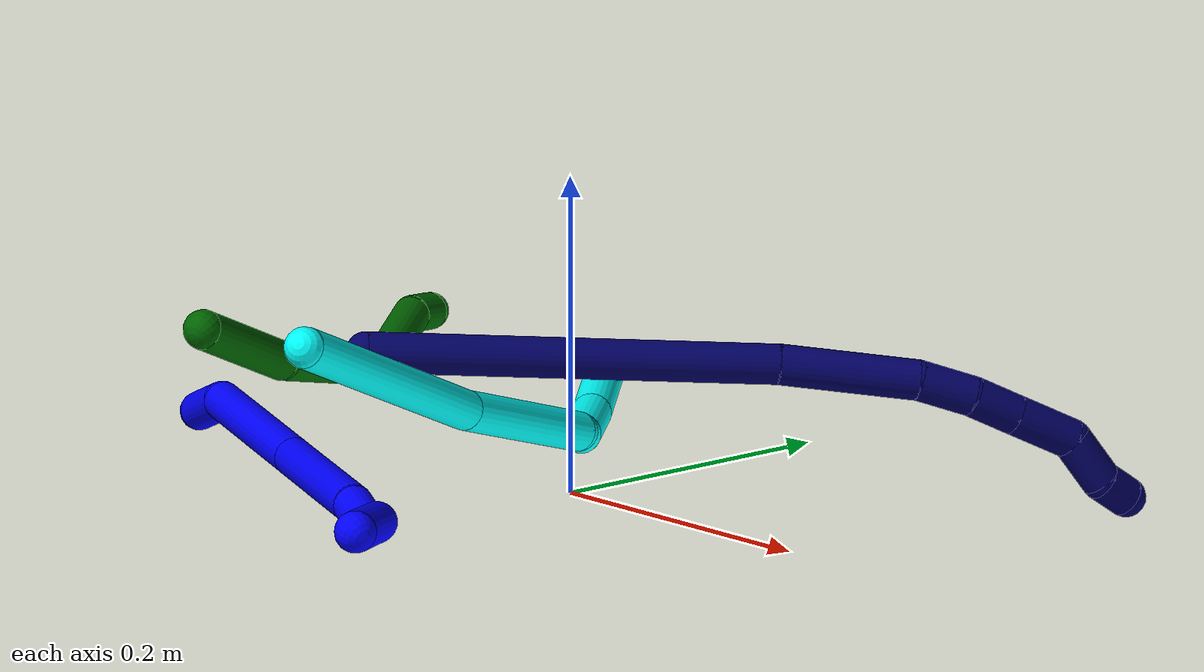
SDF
<sdf version="1.7">
 <world name="default">
  <model name="1">
   <static>0</static>
   <link name="1">
    <collision name="collision-cylinder-e_1_1_4">
     <pose>-0.032792 0.018142 -0.029388 -2.58853 -0.759489 1.90535</pose>
     <geometry><cylinder><radius>0.0125</radius><length>0.09525</length></cylinder></geometry>
     <surface>
      <friction><ode><mu>1.16</mu><mu2>1.16</mu2><slip1>0</slip1><slip2>0</slip2></ode></friction>
      <contact><ode><kp>1e+06</kp><kd>1</kd><max_vel>0</max_vel><min_depth>0.001</min_depth></ode></contact>
     </surface>
    </collision>
    <visual name="visual-cylinder-e_1_1_4">
     <pose>-0.032792 0.018142 -0.029388 -2.58853 -0.759489 1.90535</pose>
     <geometry><cylinder><radius>0.0125</radius><length>0.09525</length></cylinder></geometry>
     <material><ambient>0 0 1 1</ambient></material>
    </visual>
    <collision name="collision-cylinder-e_2_4_5">
     <pose>-0.084616 0.055157 -0.084108 -2.50127 -0.542245 1.39537</pose>
     <geometry><cylinder><radius>0.0125</radius><length>0.073759</length></cylinder></geometry>
     <surface>
      <friction><ode><mu>1.16</mu><mu2>1.16</mu2><slip1>0</slip1><slip2>0</slip2></ode></friction>
      <contact><ode><kp>1e+06</kp><kd>1</kd><max_vel>0</max_vel><min_depth>0.001</min_depth></ode></contact>
     </surface>
    </collision>
    <visual name="visual-cylinder-e_2_4_5">
     <pose>-0.084616 0.055157 -0.084108 -2.50127 -0.542245 1.39537</pose>
     <geometry><cylinder><radius>0.0125</radius><length>0.073759</length></cylinder></geometry>
     <material><ambient>0 0 1 1</ambient></material>
    </visual>
    <collision name="collision-cylinder-e_3_5_6">
     <pose>-0.108938 0.075839 -0.124562 -3.02256 -0.334287 2.46257</pose>
     <geometry><cylinder><radius>0.0125</radius><length>0.032246</length></cylinder></geometry>
     <surface>
      <friction><ode><mu>1.16</mu><mu2>1.16</mu2><slip1>0</slip1><slip2>0</slip2></ode></friction>
      <contact><ode><kp>1e+06</kp><kd>1</kd><max_vel>0</max_vel><min_depth>0.001</min_depth></ode></contact>
     </surface>
    </collision>
    <visual name="visual-cylinder-e_3_5_6">
     <pose>-0.108938 0.075839 -0.124562 -3.02256 -0.334287 2.46257</pose>
     <geometry><cylinder><radius>0.0125</radius><length>0.032246</length></cylinder></geometry>
     <material><ambient>0 0 1 1</ambient></material>
    </visual>
    <collision name="collision-cylinder-e_4_6_7">
     <pose>-0.132362 0.094624 -0.193464 -2.83583 -0.311115 1.58843</pose>
     <geometry><cylinder><radius>0.0125</radius><length>0.118479</length></cylinder></geometry>
     <surface>
      <friction><ode><mu>1.16</mu><mu2>1.16</mu2><slip1>0</slip1><slip2>0</slip2></ode></friction>
      <contact><ode><kp>1e+06</kp><kd>1</kd><max_vel>0</max_vel><min_depth>0.001</min_depth></ode></contact>
     </surface>
    </collision>
    <visual name="visual-cylinder-e_4_6_7">
     <pose>-0.132362 0.094624 -0.193464 -2.83583 -0.311115 1.58843</pose>
     <geometry><cylinder><radius>0.0125</radius><length>0.118479</length></cylinder></geometry>
     <material><ambient>0 0 1 1</ambient></material>
    </visual>
    <collision name="collision-cylinder-e_5_7_8">
     <pose>-0.167376 0.12816 -0.30773 -2.87436 -0.262935 1.55441</pose>
     <geometry><cylinder><radius>0.0125</radius><length>0.129888</length></cylinder></geometry>
     <surface>
      <friction><ode><mu>1.16</mu><mu2>1.16</mu2><slip1>0</slip1><slip2>0</slip2></ode></friction>
      <contact><ode><kp>1e+06</kp><kd>1</kd><max_vel>0</max_vel><min_depth>0.001</min_depth></ode></contact>
     </surface>
    </collision>
    <visual name="visual-cylinder-e_5_7_8">
     <pose>-0.167376 0.12816 -0.30773 -2.87436 -0.262935 1.55441</pose>
     <geometry><cylinder><radius>0.0125</radius><length>0.129888</length></cylinder></geometry>
     <material><ambient>0 0 1 1</ambient></material>
    </visual>
    <collision name="collision-cylinder-e_6_8_2">
     <pose>-0.191438 0.160143 -0.386791 -2.44861 -0.289119 0.766507</pose>
     <geometry><cylinder><radius>0.0125</radius><length>0.050379</length></cylinder></geometry>
     <surface>
      <friction><ode><mu>1.16</mu><mu2>1.16</mu2><slip1>0</slip1><slip2>0</slip2></ode></friction>
      <contact><ode><kp>1e+06</kp><kd>1</kd><max_vel>0</max_vel><min_depth>0.001</min_depth></ode></contact>
     </surface>
    </collision>
    <visual name="visual-cylinder-e_6_8_2">
     <pose>-0.191438 0.160143 -0.386791 -2.44861 -0.289119 0.766507</pose>
     <geometry><cylinder><radius>0.0125</radius><length>0.050379</length></cylinder></geometry>
     <material><ambient>0 0 1 1</ambient></material>
    </visual>
    <collision name="collision-sphere-2">
     <pose>-0.19862 0.175568 -0.405366 0 -0 0</pose>
     <geometry><sphere><radius>0.0125</radius></sphere></geometry>
     <surface>
      <friction><ode><mu>1.16</mu><mu2>1.16</mu2><slip1>0</slip1><slip2>0</slip2></ode></friction>
      <contact><ode><kp>1e+06</kp><kd>1</kd><max_vel>0</max_vel><min_depth>0.001</min_depth></ode></contact>
     </surface>
    </collision>
    <visual name="visual-sphere-2">
     <pose>-0.19862 0.175568 -0.405366 0 -0 0</pose>
     <geometry><sphere><radius>0.0125</radius></sphere></geometry>
     <material><ambient>0 0 1 1</ambient></material>
    </visual>
    <collision name="collision-sphere-4">
     <pose>-0.065584 0.036284 -0.058776 0 -0 0</pose>
     <geometry><sphere><radius>0.0125</radius></sphere></geometry>
     <surface>
      <friction><ode><mu>1.16</mu><mu2>1.16</mu2><slip1>0</slip1><slip2>0</slip2></ode></friction>
      <contact><ode><kp>1e+06</kp><kd>1</kd><max_vel>0</max_vel><min_depth>0.001</min_depth></ode></contact>
     </surface>
    </collision>
    <visual name="visual-sphere-4">
     <pose>-0.065584 0.036284 -0.058776 0 -0 0</pose>
     <geometry><sphere><radius>0.0125</radius></sphere></geometry>
     <material><ambient>0 0 1 1</ambient></material>
    </visual>
    <collision name="collision-sphere-1">
     <geometry><sphere><radius>0.0125</radius></sphere></geometry>
     <surface>
      <friction><ode><mu>1.16</mu><mu2>1.16</mu2><slip1>0</slip1><slip2>0</slip2></ode></friction>
      <contact><ode><kp>1e+06</kp><kd>1</kd><max_vel>0</max_vel><min_depth>0.001</min_depth></ode></contact>
     </surface>
    </collision>
    <visual name="visual-sphere-1">
     <geometry><sphere><radius>0.0125</radius></sphere></geometry>
     <material><ambient>0 0 1 1</ambient></material>
    </visual>
    <collision name="collision-sphere-8">
     <pose>-0.184257 0.144719 -0.368216 0 -0 0</pose>
     <geometry><sphere><radius>0.0125</radius></sphere></geometry>
     <surface>
      <friction><ode><mu>1.16</mu><mu2>1.16</mu2><slip1>0</slip1><slip2>0</slip2></ode></friction>
      <contact><ode><kp>1e+06</kp><kd>1</kd><max_vel>0</max_vel><min_depth>0.001</min_depth></ode></contact>
     </surface>
    </collision>
    <visual name="visual-sphere-8">
     <pose>-0.184257 0.144719 -0.368216 0 -0 0</pose>
     <geometry><sphere><radius>0.0125</radius></sphere></geometry>
     <material><ambient>0 0 1 1</ambient></material>
    </visual>
    <collision name="collision-sphere-5">
     <pose>-0.103648 0.07403 -0.109439 0 -0 0</pose>
     <geometry><sphere><radius>0.0125</radius></sphere></geometry>
     <surface>
      <friction><ode><mu>1.16</mu><mu2>1.16</mu2><slip1>0</slip1><slip2>0</slip2></ode></friction>
      <contact><ode><kp>1e+06</kp><kd>1</kd><max_vel>0</max_vel><min_depth>0.001</min_depth></ode></contact>
     </surface>
    </collision>
    <visual name="visual-sphere-5">
     <pose>-0.103648 0.07403 -0.109439 0 -0 0</pose>
     <geometry><sphere><radius>0.0125</radius></sphere></geometry>
     <material><ambient>0 0 1 1</ambient></material>
    </visual>
    <collision name="collision-sphere-6">
     <pose>-0.114228 0.077647 -0.139684 0 -0 0</pose>
     <geometry><sphere><radius>0.0125</radius></sphere></geometry>
     <surface>
      <friction><ode><mu>1.16</mu><mu2>1.16</mu2><slip1>0</slip1><slip2>0</slip2></ode></friction>
      <contact><ode><kp>1e+06</kp><kd>1</kd><max_vel>0</max_vel><min_depth>0.001</min_depth></ode></contact>
     </surface>
    </collision>
    <visual name="visual-sphere-6">
     <pose>-0.114228 0.077647 -0.139684 0 -0 0</pose>
     <geometry><sphere><radius>0.0125</radius></sphere></geometry>
     <material><ambient>0 0 1 1</ambient></material>
    </visual>
    <collision name="collision-sphere-7">
     <pose>-0.150496 0.1116 -0.247244 0 -0 0</pose>
     <geometry><sphere><radius>0.0125</radius></sphere></geometry>
     <surface>
      <friction><ode><mu>1.16</mu><mu2>1.16</mu2><slip1>0</slip1><slip2>0</slip2></ode></friction>
      <contact><ode><kp>1e+06</kp><kd>1</kd><max_vel>0</max_vel><min_depth>0.001</min_depth></ode></contact>
     </surface>
    </collision>
    <visual name="visual-sphere-7">
     <pose>-0.150496 0.1116 -0.247244 0 -0 0</pose>
     <geometry><sphere><radius>0.0125</radius></sphere></geometry>
     <material><ambient>0 0 1 1</ambient></material>
    </visual>
    <inertial>
     <pose>-0.119888 0.088334 -0.190795 0 -0 0</pose>
     <mass>0.5</mass>
     <inertia><ixx>0.000389</ixx><ixy>0</ixy><ixz>0</ixz><iyy>0.000501</iyy><iyz>0</iyz><izz>-8e-06</izz></inertia>
    </inertial>
   </link>
   <pose>0.140263 -0.288449 0.04923 -1.91668 -0.050495 -1.62883</pose>
  </model>
  <model name="3">
   <static>0</static>
   <link name="3">
    <collision name="collision-cylinder-e_1_1_4">
     <pose>0.015715 0.008049 -0.098988 -3.06046 0.156934 -2.18855</pose>
     <geometry><cylinder><radius>0.0125</radius><length>0.201101</length></cylinder></geometry>
     <surface>
      <friction><ode><mu>1.16</mu><mu2>1.16</mu2><slip1>0</slip1><slip2>0</slip2></ode></friction>
      <contact><ode><kp>1e+06</kp><kd>1</kd><max_vel>0</max_vel><min_depth>0.001</min_depth></ode></contact>
     </surface>
    </collision>
    <visual name="visual-cylinder-e_1_1_4">
     <pose>0.015715 0.008049 -0.098988 -3.06046 0.156934 -2.18855</pose>
     <geometry><cylinder><radius>0.0125</radius><length>0.201101</length></cylinder></geometry>
     <material><ambient>0.003922 1 0.996078 1</ambient></material>
    </visual>
    <collision name="collision-cylinder-e_2_4_5">
     <pose>0.044223 0.027887 -0.262782 -2.96164 0.191832 -1.63507</pose>
     <geometry><cylinder><radius>0.0125</radius><length>0.1342</length></cylinder></geometry>
     <surface>
      <friction><ode><mu>1.16</mu><mu2>1.16</mu2><slip1>0</slip1><slip2>0</slip2></ode></friction>
      <contact><ode><kp>1e+06</kp><kd>1</kd><max_vel>0</max_vel><min_depth>0.001</min_depth></ode></contact>
     </surface>
    </collision>
    <visual name="visual-cylinder-e_2_4_5">
     <pose>0.044223 0.027887 -0.262782 -2.96164 0.191832 -1.63507</pose>
     <geometry><cylinder><radius>0.0125</radius><length>0.1342</length></cylinder></geometry>
     <material><ambient>0.003922 1 0.996078 1</ambient></material>
    </visual>
    <collision name="collision-cylinder-e_3_5_6">
     <pose>0.054472 0.040438 -0.337872 -3.06761 -0.241909 2.55045</pose>
     <geometry><cylinder><radius>0.0125</radius><length>0.021244</length></cylinder></geometry>
     <surface>
      <friction><ode><mu>1.16</mu><mu2>1.16</mu2><slip1>0</slip1><slip2>0</slip2></ode></friction>
      <contact><ode><kp>1e+06</kp><kd>1</kd><max_vel>0</max_vel><min_depth>0.001</min_depth></ode></contact>
     </surface>
    </collision>
    <visual name="visual-cylinder-e_3_5_6">
     <pose>0.054472 0.040438 -0.337872 -3.06761 -0.241909 2.55045</pose>
     <geometry><cylinder><radius>0.0125</radius><length>0.021244</length></cylinder></geometry>
     <material><ambient>0.003922 1 0.996078 1</ambient></material>
    </visual>
    <collision name="collision-cylinder-e_4_6_7">
     <pose>0.044601 0.05094 -0.370272 -2.72676 -0.29438 1.22751</pose>
     <geometry><cylinder><radius>0.0125</radius><length>0.050501</length></cylinder></geometry>
     <surface>
      <friction><ode><mu>1.16</mu><mu2>1.16</mu2><slip1>0</slip1><slip2>0</slip2></ode></friction>
      <contact><ode><kp>1e+06</kp><kd>1</kd><max_vel>0</max_vel><min_depth>0.001</min_depth></ode></contact>
     </surface>
    </collision>
    <visual name="visual-cylinder-e_4_6_7">
     <pose>0.044601 0.05094 -0.370272 -2.72676 -0.29438 1.22751</pose>
     <geometry><cylinder><radius>0.0125</radius><length>0.050501</length></cylinder></geometry>
     <material><ambient>0.003922 1 0.996078 1</ambient></material>
    </visual>
    <collision name="collision-cylinder-e_5_7_2">
     <pose>0.022298 0.082587 -0.430542 -2.62038 -0.328094 1.11106</pose>
     <geometry><cylinder><radius>0.0125</radius><length>0.092953</length></cylinder></geometry>
     <surface>
      <friction><ode><mu>1.16</mu><mu2>1.16</mu2><slip1>0</slip1><slip2>0</slip2></ode></friction>
      <contact><ode><kp>1e+06</kp><kd>1</kd><max_vel>0</max_vel><min_depth>0.001</min_depth></ode></contact>
     </surface>
    </collision>
    <visual name="visual-cylinder-e_5_7_2">
     <pose>0.022298 0.082587 -0.430542 -2.62038 -0.328094 1.11106</pose>
     <geometry><cylinder><radius>0.0125</radius><length>0.092953</length></cylinder></geometry>
     <material><ambient>0.003922 1 0.996078 1</ambient></material>
    </visual>
    <collision name="collision-sphere-2">
     <pose>0.007321 0.104495 -0.468697 0 -0 0</pose>
     <geometry><sphere><radius>0.0125</radius></sphere></geometry>
     <surface>
      <friction><ode><mu>1.16</mu><mu2>1.16</mu2><slip1>0</slip1><slip2>0</slip2></ode></friction>
      <contact><ode><kp>1e+06</kp><kd>1</kd><max_vel>0</max_vel><min_depth>0.001</min_depth></ode></contact>
     </surface>
    </collision>
    <visual name="visual-sphere-2">
     <pose>0.007321 0.104495 -0.468697 0 -0 0</pose>
     <geometry><sphere><radius>0.0125</radius></sphere></geometry>
     <material><ambient>0.003922 1 0.996078 1</ambient></material>
    </visual>
    <collision name="collision-sphere-7">
     <pose>0.037275 0.060679 -0.392387 0 -0 0</pose>
     <geometry><sphere><radius>0.0125</radius></sphere></geometry>
     <surface>
      <friction><ode><mu>1.16</mu><mu2>1.16</mu2><slip1>0</slip1><slip2>0</slip2></ode></friction>
      <contact><ode><kp>1e+06</kp><kd>1</kd><max_vel>0</max_vel><min_depth>0.001</min_depth></ode></contact>
     </surface>
    </collision>
    <visual name="visual-sphere-7">
     <pose>0.037275 0.060679 -0.392387 0 -0 0</pose>
     <geometry><sphere><radius>0.0125</radius></sphere></geometry>
     <material><ambient>0.003922 1 0.996078 1</ambient></material>
    </visual>
    <collision name="collision-sphere-6">
     <pose>0.051927 0.041201 -0.348157 0 -0 0</pose>
     <geometry><sphere><radius>0.0125</radius></sphere></geometry>
     <surface>
      <friction><ode><mu>1.16</mu><mu2>1.16</mu2><slip1>0</slip1><slip2>0</slip2></ode></friction>
      <contact><ode><kp>1e+06</kp><kd>1</kd><max_vel>0</max_vel><min_depth>0.001</min_depth></ode></contact>
     </surface>
    </collision>
    <visual name="visual-sphere-6">
     <pose>0.051927 0.041201 -0.348157 0 -0 0</pose>
     <geometry><sphere><radius>0.0125</radius></sphere></geometry>
     <material><ambient>0.003922 1 0.996078 1</ambient></material>
    </visual>
    <collision name="collision-sphere-5">
     <pose>0.057016 0.039676 -0.327588 0 -0 0</pose>
     <geometry><sphere><radius>0.0125</radius></sphere></geometry>
     <surface>
      <friction><ode><mu>1.16</mu><mu2>1.16</mu2><slip1>0</slip1><slip2>0</slip2></ode></friction>
      <contact><ode><kp>1e+06</kp><kd>1</kd><max_vel>0</max_vel><min_depth>0.001</min_depth></ode></contact>
     </surface>
    </collision>
    <visual name="visual-sphere-5">
     <pose>0.057016 0.039676 -0.327588 0 -0 0</pose>
     <geometry><sphere><radius>0.0125</radius></sphere></geometry>
     <material><ambient>0.003922 1 0.996078 1</ambient></material>
    </visual>
    <collision name="collision-sphere-1">
     <geometry><sphere><radius>0.0125</radius></sphere></geometry>
     <surface>
      <friction><ode><mu>1.16</mu><mu2>1.16</mu2><slip1>0</slip1><slip2>0</slip2></ode></friction>
      <contact><ode><kp>1e+06</kp><kd>1</kd><max_vel>0</max_vel><min_depth>0.001</min_depth></ode></contact>
     </surface>
    </collision>
    <visual name="visual-sphere-1">
     <geometry><sphere><radius>0.0125</radius></sphere></geometry>
     <material><ambient>0.003922 1 0.996078 1</ambient></material>
    </visual>
    <collision name="collision-sphere-4">
     <pose>0.03143 0.016097 -0.197976 0 -0 0</pose>
     <geometry><sphere><radius>0.0125</radius></sphere></geometry>
     <surface>
      <friction><ode><mu>1.16</mu><mu2>1.16</mu2><slip1>0</slip1><slip2>0</slip2></ode></friction>
      <contact><ode><kp>1e+06</kp><kd>1</kd><max_vel>0</max_vel><min_depth>0.001</min_depth></ode></contact>
     </surface>
    </collision>
    <visual name="visual-sphere-4">
     <pose>0.03143 0.016097 -0.197976 0 -0 0</pose>
     <geometry><sphere><radius>0.0125</radius></sphere></geometry>
     <material><ambient>0.003922 1 0.996078 1</ambient></material>
    </visual>
    <inertial>
     <pose>0.029155 0.032939 -0.242139 0 -0 0</pose>
     <mass>0.5</mass>
     <inertia>
      <ixx>-0.001055</ixx>
      <ixy>0</ixy>
      <ixz>0</ixz>
      <iyy>-0.000269</iyy>
      <iyz>0</iyz>
      <izz>-0.000286</izz>
     </inertia>
    </inertial>
   </link>
   <pose>0.094748 -0.288039 0.151462 1.12606 0.223378 0.426385</pose>
  </model>
  <model name="6">
   <static>0</static>
   <link name="6">
    <collision name="collision-cylinder-e_1_1_4">
     <pose>-0.02012 0.024438 -0.035634 -2.54045 -0.435784 1.24052</pose>
     <geometry><cylinder><radius>0.0125</radius><length>0.095327</length></cylinder></geometry>
     <surface>
      <friction><ode><mu>1.16</mu><mu2>1.16</mu2><slip1>0</slip1><slip2>0</slip2></ode></friction>
      <contact><ode><kp>1e+06</kp><kd>1</kd><max_vel>0</max_vel><min_depth>0.001</min_depth></ode></contact>
     </surface>
    </collision>
    <visual name="visual-cylinder-e_1_1_4">
     <pose>-0.02012 0.024438 -0.035634 -2.54045 -0.435784 1.24052</pose>
     <geometry><cylinder><radius>0.0125</radius><length>0.095327</length></cylinder></geometry>
     <material><ambient>0 0.392157 0.003922 1</ambient></material>
    </visual>
    <collision name="collision-cylinder-e_2_4_5">
     <pose>-0.046125 0.094836 -0.131685 -2.49128 -0.077376 0.228633</pose>
     <geometry><cylinder><radius>0.0125</radius><length>0.152278</length></cylinder></geometry>
     <surface>
      <friction><ode><mu>1.16</mu><mu2>1.16</mu2><slip1>0</slip1><slip2>0</slip2></ode></friction>
      <contact><ode><kp>1e+06</kp><kd>1</kd><max_vel>0</max_vel><min_depth>0.001</min_depth></ode></contact>
     </surface>
    </collision>
    <visual name="visual-cylinder-e_2_4_5">
     <pose>-0.046125 0.094836 -0.131685 -2.49128 -0.077376 0.228633</pose>
     <geometry><cylinder><radius>0.0125</radius><length>0.152278</length></cylinder></geometry>
     <material><ambient>0 0.392157 0.003922 1</ambient></material>
    </visual>
    <collision name="collision-cylinder-e_3_5_6">
     <pose>-0.057127 0.183523 -0.24759 -2.48538 -0.072939 0.213546</pose>
     <geometry><cylinder><radius>0.0125</radius><length>0.140438</length></cylinder></geometry>
     <surface>
      <friction><ode><mu>1.16</mu><mu2>1.16</mu2><slip1>0</slip1><slip2>0</slip2></ode></friction>
      <contact><ode><kp>1e+06</kp><kd>1</kd><max_vel>0</max_vel><min_depth>0.001</min_depth></ode></contact>
     </surface>
    </collision>
    <visual name="visual-cylinder-e_3_5_6">
     <pose>-0.057127 0.183523 -0.24759 -2.48538 -0.072939 0.213546</pose>
     <geometry><cylinder><radius>0.0125</radius><length>0.140438</length></cylinder></geometry>
     <material><ambient>0 0.392157 0.003922 1</ambient></material>
    </visual>
    <collision name="collision-cylinder-e_4_6_7">
     <pose>-0.0561 0.237486 -0.344669 -2.87777 0.141669 -0.982135</pose>
     <geometry><cylinder><radius>0.0125</radius><length>0.087037</length></cylinder></geometry>
     <surface>
      <friction><ode><mu>1.16</mu><mu2>1.16</mu2><slip1>0</slip1><slip2>0</slip2></ode></friction>
      <contact><ode><kp>1e+06</kp><kd>1</kd><max_vel>0</max_vel><min_depth>0.001</min_depth></ode></contact>
     </surface>
    </collision>
    <visual name="visual-cylinder-e_4_6_7">
     <pose>-0.0561 0.237486 -0.344669 -2.87777 0.141669 -0.982135</pose>
     <geometry><cylinder><radius>0.0125</radius><length>0.087037</length></cylinder></geometry>
     <material><ambient>0 0.392157 0.003922 1</ambient></material>
    </visual>
    <collision name="collision-cylinder-e_5_7_2">
     <pose>-0.052998 0.25309 -0.397526 -2.77166 -0.246719 1.17046</pose>
     <geometry><cylinder><radius>0.0125</radius><length>0.02492</length></cylinder></geometry>
     <surface>
      <friction><ode><mu>1.16</mu><mu2>1.16</mu2><slip1>0</slip1><slip2>0</slip2></ode></friction>
      <contact><ode><kp>1e+06</kp><kd>1</kd><max_vel>0</max_vel><min_depth>0.001</min_depth></ode></contact>
     </surface>
    </collision>
    <visual name="visual-cylinder-e_5_7_2">
     <pose>-0.052998 0.25309 -0.397526 -2.77166 -0.246719 1.17046</pose>
     <geometry><cylinder><radius>0.0125</radius><length>0.02492</length></cylinder></geometry>
     <material><ambient>0 0.392157 0.003922 1</ambient></material>
    </visual>
    <collision name="collision-sphere-2">
     <pose>-0.056041 0.257458 -0.408791 0 -0 0</pose>
     <geometry><sphere><radius>0.0125</radius></sphere></geometry>
     <surface>
      <friction><ode><mu>1.16</mu><mu2>1.16</mu2><slip1>0</slip1><slip2>0</slip2></ode></friction>
      <contact><ode><kp>1e+06</kp><kd>1</kd><max_vel>0</max_vel><min_depth>0.001</min_depth></ode></contact>
     </surface>
    </collision>
    <visual name="visual-sphere-2">
     <pose>-0.056041 0.257458 -0.408791 0 -0 0</pose>
     <geometry><sphere><radius>0.0125</radius></sphere></geometry>
     <material><ambient>0 0.392157 0.003922 1</ambient></material>
    </visual>
    <collision name="collision-sphere-7">
     <pose>-0.049955 0.248721 -0.386261 0 -0 0</pose>
     <geometry><sphere><radius>0.0125</radius></sphere></geometry>
     <surface>
      <friction><ode><mu>1.16</mu><mu2>1.16</mu2><slip1>0</slip1><slip2>0</slip2></ode></friction>
      <contact><ode><kp>1e+06</kp><kd>1</kd><max_vel>0</max_vel><min_depth>0.001</min_depth></ode></contact>
     </surface>
    </collision>
    <visual name="visual-sphere-7">
     <pose>-0.049955 0.248721 -0.386261 0 -0 0</pose>
     <geometry><sphere><radius>0.0125</radius></sphere></geometry>
     <material><ambient>0 0.392157 0.003922 1</ambient></material>
    </visual>
    <collision name="collision-sphere-6">
     <pose>-0.062245 0.226251 -0.303077 0 -0 0</pose>
     <geometry><sphere><radius>0.0125</radius></sphere></geometry>
     <surface>
      <friction><ode><mu>1.16</mu><mu2>1.16</mu2><slip1>0</slip1><slip2>0</slip2></ode></friction>
      <contact><ode><kp>1e+06</kp><kd>1</kd><max_vel>0</max_vel><min_depth>0.001</min_depth></ode></contact>
     </surface>
    </collision>
    <visual name="visual-sphere-6">
     <pose>-0.062245 0.226251 -0.303077 0 -0 0</pose>
     <geometry><sphere><radius>0.0125</radius></sphere></geometry>
     <material><ambient>0 0.392157 0.003922 1</ambient></material>
    </visual>
    <collision name="collision-sphere-5">
     <pose>-0.05201 0.140795 -0.192103 0 -0 0</pose>
     <geometry><sphere><radius>0.0125</radius></sphere></geometry>
     <surface>
      <friction><ode><mu>1.16</mu><mu2>1.16</mu2><slip1>0</slip1><slip2>0</slip2></ode></friction>
      <contact><ode><kp>1e+06</kp><kd>1</kd><max_vel>0</max_vel><min_depth>0.001</min_depth></ode></contact>
     </surface>
    </collision>
    <visual name="visual-sphere-5">
     <pose>-0.05201 0.140795 -0.192103 0 -0 0</pose>
     <geometry><sphere><radius>0.0125</radius></sphere></geometry>
     <material><ambient>0 0.392157 0.003922 1</ambient></material>
    </visual>
    <collision name="collision-sphere-1">
     <geometry><sphere><radius>0.0125</radius></sphere></geometry>
     <surface>
      <friction><ode><mu>1.16</mu><mu2>1.16</mu2><slip1>0</slip1><slip2>0</slip2></ode></friction>
      <contact><ode><kp>1e+06</kp><kd>1</kd><max_vel>0</max_vel><min_depth>0.001</min_depth></ode></contact>
     </surface>
    </collision>
    <visual name="visual-sphere-1">
     <geometry><sphere><radius>0.0125</radius></sphere></geometry>
     <material><ambient>0 0.392157 0.003922 1</ambient></material>
    </visual>
    <collision name="collision-sphere-4">
     <pose>-0.040239 0.048877 -0.071268 0 -0 0</pose>
     <geometry><sphere><radius>0.0125</radius></sphere></geometry>
     <surface>
      <friction><ode><mu>1.16</mu><mu2>1.16</mu2><slip1>0</slip1><slip2>0</slip2></ode></friction>
      <contact><ode><kp>1e+06</kp><kd>1</kd><max_vel>0</max_vel><min_depth>0.001</min_depth></ode></contact>
     </surface>
    </collision>
    <visual name="visual-sphere-4">
     <pose>-0.040239 0.048877 -0.071268 0 -0 0</pose>
     <geometry><sphere><radius>0.0125</radius></sphere></geometry>
     <material><ambient>0 0.392157 0.003922 1</ambient></material>
    </visual>
    <inertial>
     <pose>-0.046336 0.139043 -0.196252 0 -0 0</pose>
     <mass>0.5</mass>
     <inertia>
      <ixx>0.00071</ixx>
      <ixy>0</ixy>
      <ixz>0</ixz>
      <iyy>-0.000287</iyy>
      <iyz>0</iyz>
      <izz>-0.000347</izz>
     </inertia>
    </inertial>
   </link>
   <pose>-0.101733 -0.208953 0.117527 -1.98541 -0.635675 -2.55497</pose>
  </model>
  <model name="7">
   <static>0</static>
   <link name="7">
    <collision name="collision-cylinder-e_1_1_4">
     <pose>0.066024 0.089343 -0.059003 -2.15445 0.552574 -0.970088</pose>
     <geometry><cylinder><radius>0.0125</radius><length>0.251576</length></cylinder></geometry>
     <surface>
      <friction><ode><mu>1.16</mu><mu2>1.16</mu2><slip1>0</slip1><slip2>0</slip2></ode></friction>
      <contact><ode><kp>1e+06</kp><kd>1</kd><max_vel>0</max_vel><min_depth>0.001</min_depth></ode></contact>
     </surface>
    </collision>
    <visual name="visual-cylinder-e_1_1_4">
     <pose>0.066024 0.089343 -0.059003 -2.15445 0.552574 -0.970088</pose>
     <geometry><cylinder><radius>0.0125</radius><length>0.251576</length></cylinder></geometry>
     <material><ambient>0.003922 0 0.403922 1</ambient></material>
    </visual>
    <collision name="collision-cylinder-e_2_4_5">
     <pose>0.156807 0.205844 -0.140298 -2.25814 0.613872 -1.18095</pose>
     <geometry><cylinder><radius>0.0125</radius><length>0.085967</length></cylinder></geometry>
     <surface>
      <friction><ode><mu>1.16</mu><mu2>1.16</mu2><slip1>0</slip1><slip2>0</slip2></ode></friction>
      <contact><ode><kp>1e+06</kp><kd>1</kd><max_vel>0</max_vel><min_depth>0.001</min_depth></ode></contact>
     </surface>
    </collision>
    <visual name="visual-cylinder-e_2_4_5">
     <pose>0.156807 0.205844 -0.140298 -2.25814 0.613872 -1.18095</pose>
     <geometry><cylinder><radius>0.0125</radius><length>0.085967</length></cylinder></geometry>
     <material><ambient>0.003922 0 0.403922 1</ambient></material>
    </visual>
    <collision name="collision-cylinder-e_3_5_6">
     <pose>0.189387 0.243209 -0.17455 -2.43499 0.461519 -1.1345</pose>
     <geometry><cylinder><radius>0.0125</radius><length>0.03512</length></cylinder></geometry>
     <surface>
      <friction><ode><mu>1.16</mu><mu2>1.16</mu2><slip1>0</slip1><slip2>0</slip2></ode></friction>
      <contact><ode><kp>1e+06</kp><kd>1</kd><max_vel>0</max_vel><min_depth>0.001</min_depth></ode></contact>
     </surface>
    </collision>
    <visual name="visual-cylinder-e_3_5_6">
     <pose>0.189387 0.243209 -0.17455 -2.43499 0.461519 -1.1345</pose>
     <geometry><cylinder><radius>0.0125</radius><length>0.03512</length></cylinder></geometry>
     <material><ambient>0.003922 0 0.403922 1</ambient></material>
    </visual>
    <collision name="collision-cylinder-e_4_6_7">
     <pose>0.201825 0.261962 -0.198359 -2.5169 0.306166 -0.89146</pose>
     <geometry><cylinder><radius>0.0125</radius><length>0.030645</length></cylinder></geometry>
     <surface>
      <friction><ode><mu>1.16</mu><mu2>1.16</mu2><slip1>0</slip1><slip2>0</slip2></ode></friction>
      <contact><ode><kp>1e+06</kp><kd>1</kd><max_vel>0</max_vel><min_depth>0.001</min_depth></ode></contact>
     </surface>
    </collision>
    <visual name="visual-cylinder-e_4_6_7">
     <pose>0.201825 0.261962 -0.198359 -2.5169 0.306166 -0.89146</pose>
     <geometry><cylinder><radius>0.0125</radius><length>0.030645</length></cylinder></geometry>
     <material><ambient>0.003922 0 0.403922 1</ambient></material>
    </visual>
    <collision name="collision-cylinder-e_5_7_8">
     <pose>0.212582 0.281972 -0.225945 -2.51191 0.305444 -0.883013</pose>
     <geometry><cylinder><radius>0.0125</radius><length>0.040829</length></cylinder></geometry>
     <surface>
      <friction><ode><mu>1.16</mu><mu2>1.16</mu2><slip1>0</slip1><slip2>0</slip2></ode></friction>
      <contact><ode><kp>1e+06</kp><kd>1</kd><max_vel>0</max_vel><min_depth>0.001</min_depth></ode></contact>
     </surface>
    </collision>
    <visual name="visual-cylinder-e_5_7_8">
     <pose>0.212582 0.281972 -0.225945 -2.51191 0.305444 -0.883013</pose>
     <geometry><cylinder><radius>0.0125</radius><length>0.040829</length></cylinder></geometry>
     <material><ambient>0.003922 0 0.403922 1</ambient></material>
    </visual>
    <collision name="collision-cylinder-e_6_8_9">
     <pose>0.220919 0.295855 -0.258016 -2.99469 0.132325 -1.46613</pose>
     <geometry><cylinder><radius>0.0125</radius><length>0.033316</length></cylinder></geometry>
     <surface>
      <friction><ode><mu>1.16</mu><mu2>1.16</mu2><slip1>0</slip1><slip2>0</slip2></ode></friction>
      <contact><ode><kp>1e+06</kp><kd>1</kd><max_vel>0</max_vel><min_depth>0.001</min_depth></ode></contact>
     </surface>
    </collision>
    <visual name="visual-cylinder-e_6_8_9">
     <pose>0.220919 0.295855 -0.258016 -2.99469 0.132325 -1.46613</pose>
     <geometry><cylinder><radius>0.0125</radius><length>0.033316</length></cylinder></geometry>
     <material><ambient>0.003922 0 0.403922 1</ambient></material>
    </visual>
    <collision name="collision-cylinder-e_7_9_2">
     <pose>0.223664 0.3041 -0.283985 -2.59761 0.048594 -0.173828</pose>
     <geometry><cylinder><radius>0.0125</radius><length>0.022547</length></cylinder></geometry>
     <surface>
      <friction><ode><mu>1.16</mu><mu2>1.16</mu2><slip1>0</slip1><slip2>0</slip2></ode></friction>
      <contact><ode><kp>1e+06</kp><kd>1</kd><max_vel>0</max_vel><min_depth>0.001</min_depth></ode></contact>
     </surface>
    </collision>
    <visual name="visual-cylinder-e_7_9_2">
     <pose>0.223664 0.3041 -0.283985 -2.59761 0.048594 -0.173828</pose>
     <geometry><cylinder><radius>0.0125</radius><length>0.022547</length></cylinder></geometry>
     <material><ambient>0.003922 0 0.403922 1</ambient></material>
    </visual>
    <collision name="collision-sphere-2">
     <pose>0.224212 0.309927 -0.29362 0 -0 0</pose>
     <geometry><sphere><radius>0.0125</radius></sphere></geometry>
     <surface>
      <friction><ode><mu>1.16</mu><mu2>1.16</mu2><slip1>0</slip1><slip2>0</slip2></ode></friction>
      <contact><ode><kp>1e+06</kp><kd>1</kd><max_vel>0</max_vel><min_depth>0.001</min_depth></ode></contact>
     </surface>
    </collision>
    <visual name="visual-sphere-2">
     <pose>0.224212 0.309927 -0.29362 0 -0 0</pose>
     <geometry><sphere><radius>0.0125</radius></sphere></geometry>
     <material><ambient>0.003922 0 0.403922 1</ambient></material>
    </visual>
    <collision name="collision-sphere-9">
     <pose>0.223117 0.298272 -0.27435 0 -0 0</pose>
     <geometry><sphere><radius>0.0125</radius></sphere></geometry>
     <surface>
      <friction><ode><mu>1.16</mu><mu2>1.16</mu2><slip1>0</slip1><slip2>0</slip2></ode></friction>
      <contact><ode><kp>1e+06</kp><kd>1</kd><max_vel>0</max_vel><min_depth>0.001</min_depth></ode></contact>
     </surface>
    </collision>
    <visual name="visual-sphere-9">
     <pose>0.223117 0.298272 -0.27435 0 -0 0</pose>
     <geometry><sphere><radius>0.0125</radius></sphere></geometry>
     <material><ambient>0.003922 0 0.403922 1</ambient></material>
    </visual>
    <collision name="collision-sphere-4">
     <pose>0.132047 0.178686 -0.118005 0 -0 0</pose>
     <geometry><sphere><radius>0.0125</radius></sphere></geometry>
     <surface>
      <friction><ode><mu>1.16</mu><mu2>1.16</mu2><slip1>0</slip1><slip2>0</slip2></ode></friction>
      <contact><ode><kp>1e+06</kp><kd>1</kd><max_vel>0</max_vel><min_depth>0.001</min_depth></ode></contact>
     </surface>
    </collision>
    <visual name="visual-sphere-4">
     <pose>0.132047 0.178686 -0.118005 0 -0 0</pose>
     <geometry><sphere><radius>0.0125</radius></sphere></geometry>
     <material><ambient>0.003922 0 0.403922 1</ambient></material>
    </visual>
    <collision name="collision-sphere-1">
     <geometry><sphere><radius>0.0125</radius></sphere></geometry>
     <surface>
      <friction><ode><mu>1.16</mu><mu2>1.16</mu2><slip1>0</slip1><slip2>0</slip2></ode></friction>
      <contact><ode><kp>1e+06</kp><kd>1</kd><max_vel>0</max_vel><min_depth>0.001</min_depth></ode></contact>
     </surface>
    </collision>
    <visual name="visual-sphere-1">
     <geometry><sphere><radius>0.0125</radius></sphere></geometry>
     <material><ambient>0.003922 0 0.403922 1</ambient></material>
    </visual>
    <collision name="collision-sphere-8">
     <pose>0.218721 0.293438 -0.241681 0 -0 0</pose>
     <geometry><sphere><radius>0.0125</radius></sphere></geometry>
     <surface>
      <friction><ode><mu>1.16</mu><mu2>1.16</mu2><slip1>0</slip1><slip2>0</slip2></ode></friction>
      <contact><ode><kp>1e+06</kp><kd>1</kd><max_vel>0</max_vel><min_depth>0.001</min_depth></ode></contact>
     </surface>
    </collision>
    <visual name="visual-sphere-8">
     <pose>0.218721 0.293438 -0.241681 0 -0 0</pose>
     <geometry><sphere><radius>0.0125</radius></sphere></geometry>
     <material><ambient>0.003922 0 0.403922 1</ambient></material>
    </visual>
    <collision name="collision-sphere-5">
     <pose>0.181567 0.233001 -0.162591 0 -0 0</pose>
     <geometry><sphere><radius>0.0125</radius></sphere></geometry>
     <surface>
      <friction><ode><mu>1.16</mu><mu2>1.16</mu2><slip1>0</slip1><slip2>0</slip2></ode></friction>
      <contact><ode><kp>1e+06</kp><kd>1</kd><max_vel>0</max_vel><min_depth>0.001</min_depth></ode></contact>
     </surface>
    </collision>
    <visual name="visual-sphere-5">
     <pose>0.181567 0.233001 -0.162591 0 -0 0</pose>
     <geometry><sphere><radius>0.0125</radius></sphere></geometry>
     <material><ambient>0.003922 0 0.403922 1</ambient></material>
    </visual>
    <collision name="collision-sphere-6">
     <pose>0.197206 0.253418 -0.186508 0 -0 0</pose>
     <geometry><sphere><radius>0.0125</radius></sphere></geometry>
     <surface>
      <friction><ode><mu>1.16</mu><mu2>1.16</mu2><slip1>0</slip1><slip2>0</slip2></ode></friction>
      <contact><ode><kp>1e+06</kp><kd>1</kd><max_vel>0</max_vel><min_depth>0.001</min_depth></ode></contact>
     </surface>
    </collision>
    <visual name="visual-sphere-6">
     <pose>0.197206 0.253418 -0.186508 0 -0 0</pose>
     <geometry><sphere><radius>0.0125</radius></sphere></geometry>
     <material><ambient>0.003922 0 0.403922 1</ambient></material>
    </visual>
    <collision name="collision-sphere-7">
     <pose>0.206443 0.270507 -0.210209 0 -0 0</pose>
     <geometry><sphere><radius>0.0125</radius></sphere></geometry>
     <surface>
      <friction><ode><mu>1.16</mu><mu2>1.16</mu2><slip1>0</slip1><slip2>0</slip2></ode></friction>
      <contact><ode><kp>1e+06</kp><kd>1</kd><max_vel>0</max_vel><min_depth>0.001</min_depth></ode></contact>
     </surface>
    </collision>
    <visual name="visual-sphere-7">
     <pose>0.206443 0.270507 -0.210209 0 -0 0</pose>
     <geometry><sphere><radius>0.0125</radius></sphere></geometry>
     <material><ambient>0.003922 0 0.403922 1</ambient></material>
    </visual>
    <inertial>
     <pose>0.128018 0.169935 -0.126675 0 -0 0</pose>
     <mass>0.5</mass>
     <inertia>
      <ixx>-0.000309</ixx>
      <ixy>0</ixy>
      <ixz>0</ixz>
      <iyy>-0.000904</iyy>
      <iyz>0</iyz>
      <izz>-0.001759</izz>
     </inertia>
    </inertial>
   </link>
   <pose>0.024129 -0.183733 0.121091 0.397896 -0.173628 0.002928</pose>
  </model>
 </world>
</sdf>
